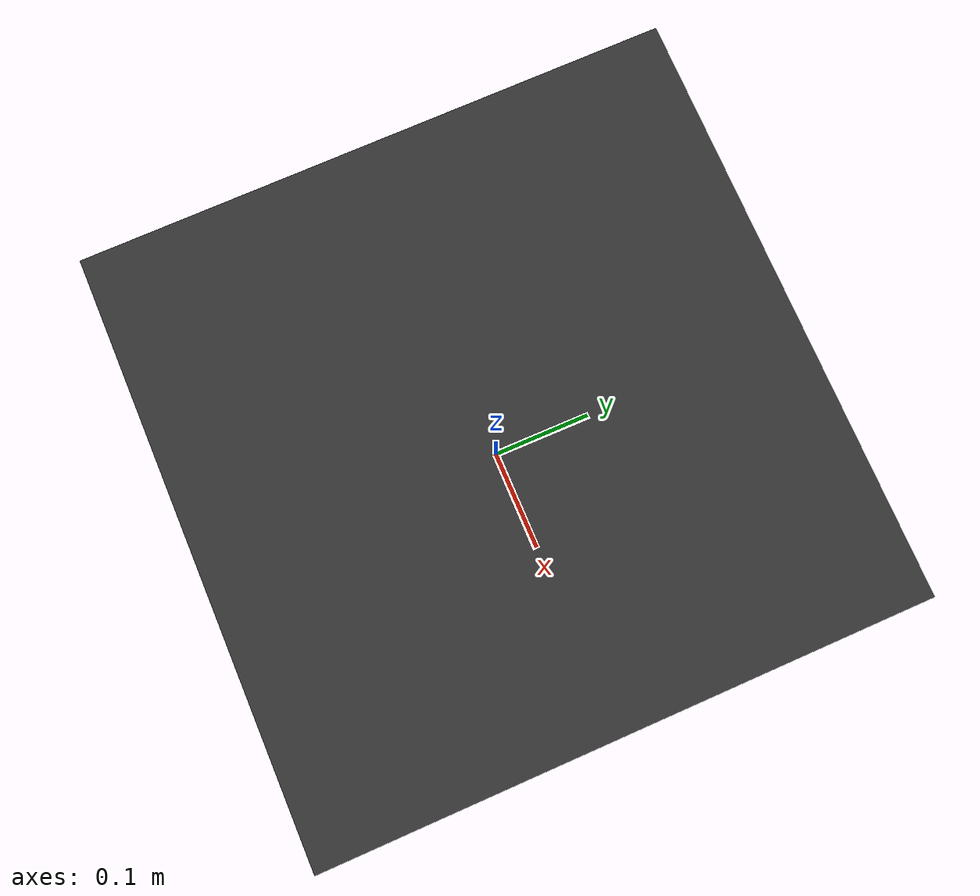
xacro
<?xml version="1.0"?>
<robot xmlns:xacro="http://www.ros.org/wiki/xacro">

  <!-- Materials -->
  <material name="carbon_grey">
    <color rgba="0.2 0.2 0.2 1"/>
  </material>
  <material name="neon_blue">
    <color rgba="0.0 0.8 1.0 1"/>
  </material>

  <!-- Base Link -->
  <link name="base_link">
    <visual>
      <origin xyz="0 0 0" rpy="0 0 0"/>
      <geometry>
        <box size="0.5 0.5 0.2"/>
      </geometry>
      <material name="carbon_grey"/>
    </visual>
    <!-- Accent Visual (Decorative strip) -->
    <visual>
      <origin xyz="0.251 0 0.05" rpy="0 0 0"/>
      <geometry>
        <box size="0.01 0.4 0.02"/>
      </geometry>
      <material name="neon_blue"/>
    </visual>
    <collision>
      <geometry>
        <box size="0.5 0.5 0.2"/>
      </geometry>
    </collision>
    <inertial>
      <mass value="10.0"/>
      <origin xyz="0 0 0" rpy="0 0 0"/>
      <inertia ixx="0.2" ixy="0" ixz="0" iyy="0.2" iyz="0" izz="0.4"/>
    </inertial>
  </link>

  <gazebo reference="base_link">
    <visual>
      <material>
        <ambient>0.1 0.1 0.1 1</ambient>
        <diffuse>0.2 0.2 0.2 1</diffuse>
        <specular>0.5 0.5 0.5 1</specular>
      </material>
    </visual>
    <mu1>0.0</mu1>
    <mu2>0.0</mu2>
  </gazebo>

  <!-- Footprint (Ground projection) -->
  <link name="base_footprint"/>
  <joint name="base_footprint_joint" type="fixed">
    <parent link="base_footprint"/>
    <child link="base_link"/>
    <origin xyz="0 0 0.1" rpy="0 0 0"/>
  </joint>

</robot>
